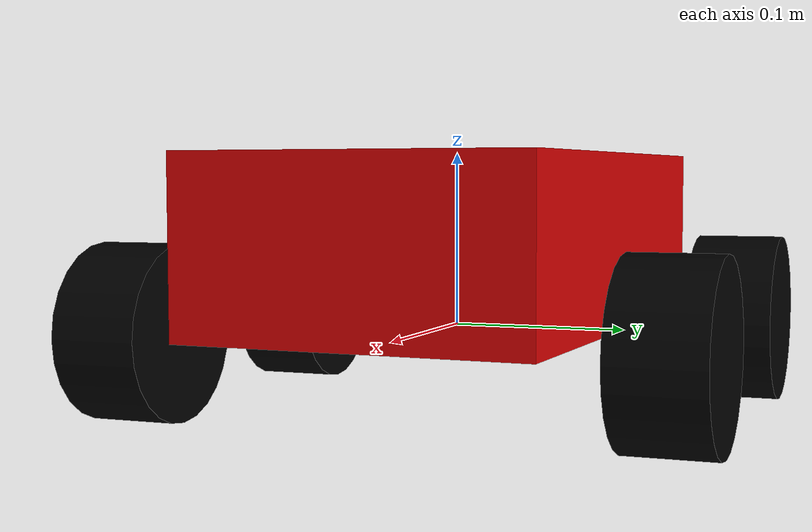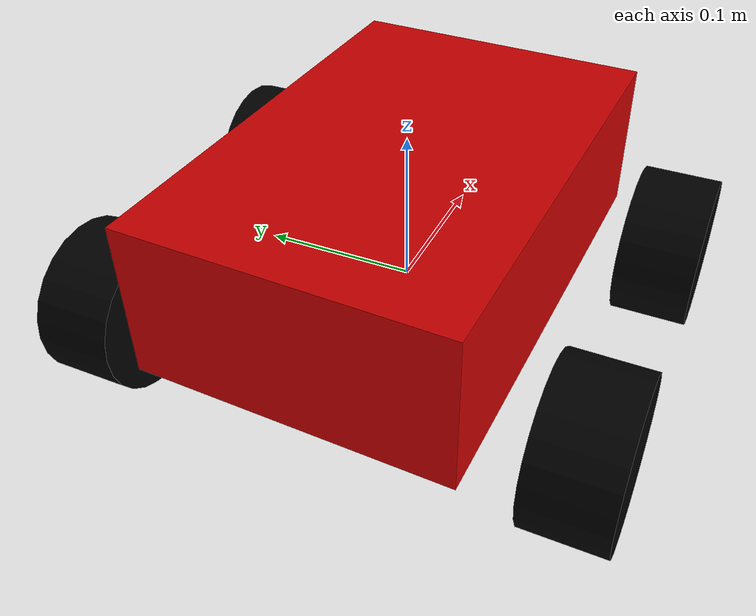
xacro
<?xml version="1.0"?>

<robot xmlns:xacro="http://www.ros.org/wiki/xacro"
    xmlns:sensor="http://playerstage.sourceforge.net/gazebo/xmlschema/#sensor"
        xmlns:controller="http://playerstage.sourceforge.net/gazebo/xmlschema/#controller"
        xmlns:interface="http://playerstage.sourceforge.net/gazebo/xmlschema/#interface"
    name="robot1_xacro">

    <xacro:property name="length_wheel" value="0.05" />
    <xacro:property name="radius_wheel" value="0.05" />

    <xacro:macro name="default_inertial" params="mass">
               <inertial>
                       <mass value="${mass}" />
                       <inertia ixx="1.0" ixy="0.0" ixz="0.0"
                                iyy="1.0" iyz="0.0"
                                izz="1.0" />
               </inertial>
    </xacro:macro>

    <!-- 加载libgazebo_ros_p3d.so 插件-->
    <xacro:include filename="$(find gazebotest)/urdf/libgazebo_ros_p3d.xacro" />
    <xacro:libgazebo_ros />

    <!--加载skid_steer_drive_controller插件-->
    <xacro:include filename="$(find gazebotest)/urdf/skid_steer_drive_controller.xacro" />
    <xacro:skid_steer_drive_controller />

    <!--li xiang long add @2019.3.22-->
    <gazebo reference = "base_link">
        <plugin name="differential_drive_controller" filename="libgazebo_ros_diff_drive.so">
            <alwaysOn>true</alwaysOn>
            <updateRate>50.0</updateRate>

            <leftJoint>wheel_1</leftJoint>
            <rightJoint>wheel_2</rightJoint>

            <wheelSeparation>1.0</wheelSeparation>
            <wheelDiameter>0.5</wheelDiameter>

            <torque>1.0</torque>
            <commandTopic>cmd_vel</commandTopic>
            <odometryTopic>odom</odometryTopic>
            <odometryFrame>odom</odometryFrame>
            <robotBaseFrame>base_link</robotBaseFrame>
            <publishWheelTF>true</publishWheelTF>
            <publishWheelJointState>true</publishWheelJointState>
            <legecyMode>false</legecyMode>
            <wheelAcceleration>1</wheelAcceleration>
        </plugin>
    </gazebo>

    <link name="base_footprint">
        <visual>
            <geometry>
                   <box size="0.001 0.001 0.001"/>
                </geometry>
            <origin rpy="0 0 0" xyz="0 0 0"/>
        </visual>
        <xacro:default_inertial mass="0.0001"/>
    </link>

    <gazebo reference="base_footprint">
        <material>Gazebo/Green</material>
        <turnGravityOff>false</turnGravityOff>
    </gazebo>

    <joint name="base_footprint_joint" type="fixed">
        <origin xyz="0 0 0" />
        <parent link="base_footprint" />
        <child link="base_link" />
    </joint>

    <gazebo reference="base_link">
        <material>Gazebo/Red</material>
        <turnGravityOff>false</turnGravityOff>
    </gazebo>

    <link name="base_link">
        <visual>
             <geometry>
                    <box size="0.2 .3 .1"/>
                </geometry>
            <origin rpy="0 0 1.54" xyz="0 0 0.05"/>

              <material name="Red">
                <color rgba="0.8 0.0 0.0 1.0"/>
              </material>
        </visual>
        <collision>
            <geometry>
                    <box size="0.2 .3 0.1"/>
            </geometry>
        </collision>
        <xacro:default_inertial mass="10"/>
    </link>

    <link name="wheel_1">
        <visual>
                <geometry>
                    <cylinder length="${length_wheel}" radius="${radius_wheel}"/>
                </geometry>
            <origin rpy="0 0 0" xyz="0 0 0"/>
            <material name="black">
                <color rgba="0 0 0 1"/>
            </material>

        </visual>
        <collision>
            <geometry>
                    <cylinder length="${length_wheel}" radius="${radius_wheel}"/>
            </geometry>
        </collision>
        <xacro:default_inertial mass="1"/>
    </link>

    <link name="wheel_2">
        <visual>
                <geometry>
                    <cylinder length="${length_wheel}" radius="${radius_wheel}"/>
                </geometry>
            <origin rpy="0 0 0" xyz="0 0 0"/>
            <material name="black"/>
        </visual>
        <collision>
            <geometry>
                    <cylinder length="${length_wheel}" radius="${radius_wheel}"/>
            </geometry>
        </collision>
        <xacro:default_inertial mass="1"/>

    </link>

    <link name="wheel_3">
        <visual>
                <geometry>
                    <cylinder length="${length_wheel}" radius="${radius_wheel}"/>
                </geometry>

            <origin rpy="0 0 0" xyz="0 0 0"/>
            <material name="black"/>
        </visual>
        <collision>
            <geometry>
                    <cylinder length="${length_wheel}" radius="${radius_wheel}"/>
            </geometry>
        </collision>
        <xacro:default_inertial mass="1"/>
    </link>

    <link name="wheel_4">
        <visual>
                <geometry>
                    <cylinder length="${length_wheel}" radius="${radius_wheel}"/>
                </geometry>
            <origin rpy="0 0 0" xyz="0 0 0" />
            <material name="black"/>
        </visual>
        <collision>
            <geometry>
                    <cylinder length="${length_wheel}" radius="${radius_wheel}"/>
            </geometry>
        </collision>
        <xacro:default_inertial mass="1"/>

    </link>

 <joint name="base_to_wheel1" type="continuous">
   <parent link="base_link"/>
   <child link="wheel_1"/>
   <origin rpy="1.5707 0 0" xyz="0.1 0.15 0"/>
   <axis xyz="0 0 1" />
 </joint>

 <joint name="base_to_wheel2" type="continuous">
   <axis xyz="0 0 1" />
   <anchor xyz="0 0 0" />
   <limit effort="100" velocity="100" />
   <parent link="base_link"/>
   <child link="wheel_2"/>
   <origin rpy="1.5707 0 0" xyz="-0.1 0.15 0"/>
</joint>

 <joint name="base_to_wheel3" type="continuous">
   <parent link="base_link"/>
   <axis xyz="0 0 1" />
   <child link="wheel_3"/>
   <origin rpy="1.5707 0 0" xyz="0.1 -0.15 0"/>
 </joint>

 <joint name="base_to_wheel4" type="continuous">
   <parent link="base_link"/>
   <axis xyz="0 0 1" />
   <child link="wheel_4"/>
   <origin rpy="1.5707 0 0" xyz="-0.1 -0.15 0"/>
 </joint>
</robot>
